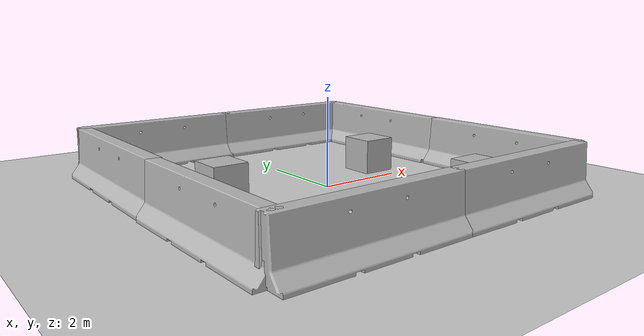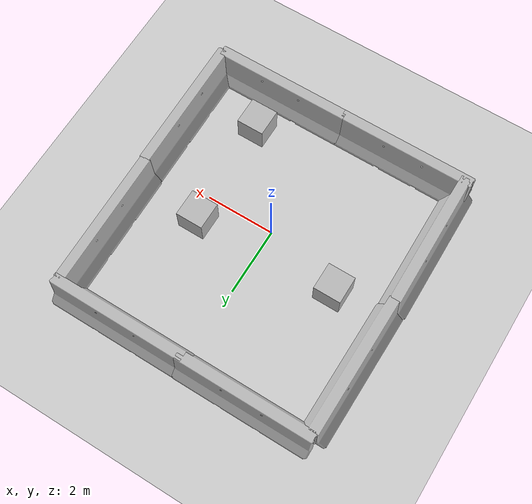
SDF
<sdf version="1.6">
 <world name="default">
  <light name="sun" type="directional">
   <pose>0 0 10 0 -0 0</pose>
   <diffuse>0.8 0.8 0.8 1</diffuse>
   <specular>0.2 0.2 0.2 1</specular>
   <attenuation>
    <range>1000</range>
    <constant>0.9</constant>
    <linear>0.01</linear>
    <quadratic>0.001</quadratic>
   </attenuation>
   <direction>-0.5 0.1 -0.9</direction>
  </light>
  <model name="ground_plane">
   <static>1</static>
   <link name="link">
    <collision name="collision">
     <geometry><plane><normal>0 0 1</normal><size>100 100</size></plane></geometry>
     <surface><friction><ode><mu>100</mu><mu2>50</mu2></ode></friction></surface>
    </collision>
    <visual name="visual">
     <cast_shadows>0</cast_shadows>
     <geometry><plane><normal>0 0 1</normal><size>100 100</size></plane></geometry>
     <material>
      <script><uri>file://media/materials/scripts/gazebo.material</uri><name>Gazebo/Grey</name></script>
     </material>
    </visual>
   </link>
  </model>
  <gravity>0 0 -9.8</gravity>
  <magnetic_field>6e-06 2.3e-05 -4.2e-05</magnetic_field>
  <atmosphere type="adiabatic"/>
  <physics name="default_physics" default="0" type="ode">
   <max_step_size>0.001</max_step_size>
   <real_time_factor>1</real_time_factor>
   <real_time_update_rate>1000</real_time_update_rate>
  </physics>
  <scene><ambient>0.4 0.4 0.4 1</ambient><background>0.7 0.7 0.7 1</background><shadows>1</shadows></scene>
  <spherical_coordinates>
   <surface_model>EARTH_WGS84</surface_model>
   <latitude_deg>0</latitude_deg>
   <longitude_deg>0</longitude_deg>
   <elevation>0</elevation>
   <heading_deg>0</heading_deg>
  </spherical_coordinates>
  <model name="number1">
   <pose>1.89329 0.737408 0.4 0 -0 0</pose>
   <static>1</static>
   <link name="link">
    <visual name="visual">
     <geometry><mesh><uri>model://number1/meshes/number.dae</uri></mesh></geometry>
     <material>
      <script>
       <uri>model://number1/materials/scripts</uri>
       <uri>model://number1/materials/textures</uri>
       <name>Number/One</name>
      </script>
     </material>
    </visual>
   </link>
  </model>
  <model name="jersey_barrier">
   <static>1</static>
   <link name="jersey_barrier::link">
    <visual name="visual">
     <geometry><mesh><uri>model://jersey_barrier/meshes/jersey_barrier.dae</uri></mesh></geometry>
    </visual>
    <collision name="upright">
     <pose>0 0 0.5715 0 -0 0</pose>
     <geometry><box><size>4.06542 0.3063 1.143</size></box></geometry>
    </collision>
    <collision name="base">
     <pose>0 0 0.032258 0 -0 0</pose>
     <geometry><box><size>4.06542 0.8107 0.064516</size></box></geometry>
    </collision>
    <collision name="base2">
     <pose>0 0 0.1 0 -0 0</pose>
     <geometry><box><size>4.06542 0.65 0.1</size></box></geometry>
    </collision>
    <collision name="base3">
     <pose>0 0 0.2 0 -0 0</pose>
     <geometry><box><size>4.06542 0.5 0.1</size></box></geometry>
    </collision>
    <collision name="left-angle">
     <pose>0 -0.224 0.2401 0.9 -0 0</pose>
     <geometry><box><size>4.06542 0.5 0.064516</size></box></geometry>
    </collision>
    <collision name="right-angle">
     <pose>0 0.224 0.2401 -0.9 0 0</pose>
     <geometry><box><size>4.06542 0.5 0.064516</size></box></geometry>
    </collision>
   </link>
   <pose>-2.05812 -3.65932 0 0 -0 0</pose>
  </model>
  <model name="jersey_barrier_0">
   <static>1</static>
   <link name="jersey_barrier_0::link">
    <visual name="visual">
     <geometry><mesh><uri>model://jersey_barrier/meshes/jersey_barrier.dae</uri></mesh></geometry>
    </visual>
    <collision name="upright">
     <pose>0 0 0.5715 0 -0 0</pose>
     <geometry><box><size>4.06542 0.3063 1.143</size></box></geometry>
    </collision>
    <collision name="base">
     <pose>0 0 0.032258 0 -0 0</pose>
     <geometry><box><size>4.06542 0.8107 0.064516</size></box></geometry>
    </collision>
    <collision name="base2">
     <pose>0 0 0.1 0 -0 0</pose>
     <geometry><box><size>4.06542 0.65 0.1</size></box></geometry>
    </collision>
    <collision name="base3">
     <pose>0 0 0.2 0 -0 0</pose>
     <geometry><box><size>4.06542 0.5 0.1</size></box></geometry>
    </collision>
    <collision name="left-angle">
     <pose>0 -0.224 0.2401 0.9 -0 0</pose>
     <geometry><box><size>4.06542 0.5 0.064516</size></box></geometry>
    </collision>
    <collision name="right-angle">
     <pose>0 0.224 0.2401 -0.9 0 0</pose>
     <geometry><box><size>4.06542 0.5 0.064516</size></box></geometry>
    </collision>
   </link>
   <pose>1.86529 -3.65845 0 0 -0 0</pose>
  </model>
  <model name="jersey_barrier_1">
   <static>1</static>
   <link name="jersey_barrier_1::link">
    <visual name="visual">
     <geometry><mesh><uri>model://jersey_barrier/meshes/jersey_barrier.dae</uri></mesh></geometry>
    </visual>
    <collision name="upright">
     <pose>0 0 0.5715 0 -0 0</pose>
     <geometry><box><size>4.06542 0.3063 1.143</size></box></geometry>
    </collision>
    <collision name="base">
     <pose>0 0 0.032258 0 -0 0</pose>
     <geometry><box><size>4.06542 0.8107 0.064516</size></box></geometry>
    </collision>
    <collision name="base2">
     <pose>0 0 0.1 0 -0 0</pose>
     <geometry><box><size>4.06542 0.65 0.1</size></box></geometry>
    </collision>
    <collision name="base3">
     <pose>0 0 0.2 0 -0 0</pose>
     <geometry><box><size>4.06542 0.5 0.1</size></box></geometry>
    </collision>
    <collision name="left-angle">
     <pose>0 -0.224 0.2401 0.9 -0 0</pose>
     <geometry><box><size>4.06542 0.5 0.064516</size></box></geometry>
    </collision>
    <collision name="right-angle">
     <pose>0 0.224 0.2401 -0.9 0 0</pose>
     <geometry><box><size>4.06542 0.5 0.064516</size></box></geometry>
    </collision>
   </link>
   <pose>-3.88228 -1.71234 0 0 -0 1.58102</pose>
  </model>
  <model name="jersey_barrier_2">
   <static>1</static>
   <link name="jersey_barrier_2::link">
    <visual name="visual">
     <geometry><mesh><uri>model://jersey_barrier/meshes/jersey_barrier.dae</uri></mesh></geometry>
    </visual>
    <collision name="upright">
     <pose>0 0 0.5715 0 -0 0</pose>
     <geometry><box><size>4.06542 0.3063 1.143</size></box></geometry>
    </collision>
    <collision name="base">
     <pose>0 0 0.032258 0 -0 0</pose>
     <geometry><box><size>4.06542 0.8107 0.064516</size></box></geometry>
    </collision>
    <collision name="base2">
     <pose>0 0 0.1 0 -0 0</pose>
     <geometry><box><size>4.06542 0.65 0.1</size></box></geometry>
    </collision>
    <collision name="base3">
     <pose>0 0 0.2 0 -0 0</pose>
     <geometry><box><size>4.06542 0.5 0.1</size></box></geometry>
    </collision>
    <collision name="left-angle">
     <pose>0 -0.224 0.2401 0.9 -0 0</pose>
     <geometry><box><size>4.06542 0.5 0.064516</size></box></geometry>
    </collision>
    <collision name="right-angle">
     <pose>0 0.224 0.2401 -0.9 0 0</pose>
     <geometry><box><size>4.06542 0.5 0.064516</size></box></geometry>
    </collision>
   </link>
   <pose>-1.92942 4.39501 0 0 -0 0</pose>
  </model>
  <model name="jersey_barrier_3">
   <static>1</static>
   <link name="jersey_barrier_3::link">
    <visual name="visual">
     <geometry><mesh><uri>model://jersey_barrier/meshes/jersey_barrier.dae</uri></mesh></geometry>
    </visual>
    <collision name="upright">
     <pose>0 0 0.5715 0 -0 0</pose>
     <geometry><box><size>4.06542 0.3063 1.143</size></box></geometry>
    </collision>
    <collision name="base">
     <pose>0 0 0.032258 0 -0 0</pose>
     <geometry><box><size>4.06542 0.8107 0.064516</size></box></geometry>
    </collision>
    <collision name="base2">
     <pose>0 0 0.1 0 -0 0</pose>
     <geometry><box><size>4.06542 0.65 0.1</size></box></geometry>
    </collision>
    <collision name="base3">
     <pose>0 0 0.2 0 -0 0</pose>
     <geometry><box><size>4.06542 0.5 0.1</size></box></geometry>
    </collision>
    <collision name="left-angle">
     <pose>0 -0.224 0.2401 0.9 -0 0</pose>
     <geometry><box><size>4.06542 0.5 0.064516</size></box></geometry>
    </collision>
    <collision name="right-angle">
     <pose>0 0.224 0.2401 -0.9 0 0</pose>
     <geometry><box><size>4.06542 0.5 0.064516</size></box></geometry>
    </collision>
   </link>
   <pose>1.88876 4.38536 0 0 -0 0</pose>
  </model>
  <model name="jersey_barrier_4">
   <static>1</static>
   <link name="jersey_barrier_4::jersey_barrier_4::link">
    <visual name="visual">
     <geometry><mesh><uri>model://jersey_barrier/meshes/jersey_barrier.dae</uri></mesh></geometry>
    </visual>
    <collision name="upright">
     <pose>0 0 0.5715 0 -0 0</pose>
     <geometry><box><size>4.06542 0.3063 1.143</size></box></geometry>
    </collision>
    <collision name="base">
     <pose>0 0 0.032258 0 -0 0</pose>
     <geometry><box><size>4.06542 0.8107 0.064516</size></box></geometry>
    </collision>
    <collision name="base2">
     <pose>0 0 0.1 0 -0 0</pose>
     <geometry><box><size>4.06542 0.65 0.1</size></box></geometry>
    </collision>
    <collision name="base3">
     <pose>0 0 0.2 0 -0 0</pose>
     <geometry><box><size>4.06542 0.5 0.1</size></box></geometry>
    </collision>
    <collision name="left-angle">
     <pose>0 -0.224 0.2401 0.9 -0 0</pose>
     <geometry><box><size>4.06542 0.5 0.064516</size></box></geometry>
    </collision>
    <collision name="right-angle">
     <pose>0 0.224 0.2401 -0.9 0 0</pose>
     <geometry><box><size>4.06542 0.5 0.064516</size></box></geometry>
    </collision>
   </link>
   <pose>3.77671 2.32653 0 0 0 -1.55992</pose>
  </model>
  <model name="jersey_barrier_5">
   <static>1</static>
   <link name="jersey_barrier_5::link">
    <visual name="visual">
     <geometry><mesh><uri>model://jersey_barrier/meshes/jersey_barrier.dae</uri></mesh></geometry>
    </visual>
    <collision name="upright">
     <pose>0 0 0.5715 0 -0 0</pose>
     <geometry><box><size>4.06542 0.3063 1.143</size></box></geometry>
    </collision>
    <collision name="base">
     <pose>0 0 0.032258 0 -0 0</pose>
     <geometry><box><size>4.06542 0.8107 0.064516</size></box></geometry>
    </collision>
    <collision name="base2">
     <pose>0 0 0.1 0 -0 0</pose>
     <geometry><box><size>4.06542 0.65 0.1</size></box></geometry>
    </collision>
    <collision name="base3">
     <pose>0 0 0.2 0 -0 0</pose>
     <geometry><box><size>4.06542 0.5 0.1</size></box></geometry>
    </collision>
    <collision name="left-angle">
     <pose>0 -0.224 0.2401 0.9 -0 0</pose>
     <geometry><box><size>4.06542 0.5 0.064516</size></box></geometry>
    </collision>
    <collision name="right-angle">
     <pose>0 0.224 0.2401 -0.9 0 0</pose>
     <geometry><box><size>4.06542 0.5 0.064516</size></box></geometry>
    </collision>
   </link>
   <pose>3.8409 -1.66107 0 0 -0 1.57986</pose>
  </model>
  <model name="jersey_barrier_6">
   <static>1</static>
   <link name="jersey_barrier_6::link">
    <visual name="visual">
     <geometry><mesh><uri>model://jersey_barrier/meshes/jersey_barrier.dae</uri></mesh></geometry>
    </visual>
    <collision name="upright">
     <pose>0 0 0.5715 0 -0 0</pose>
     <geometry><box><size>4.06542 0.3063 1.143</size></box></geometry>
    </collision>
    <collision name="base">
     <pose>0 0 0.032258 0 -0 0</pose>
     <geometry><box><size>4.06542 0.8107 0.064516</size></box></geometry>
    </collision>
    <collision name="base2">
     <pose>0 0 0.1 0 -0 0</pose>
     <geometry><box><size>4.06542 0.65 0.1</size></box></geometry>
    </collision>
    <collision name="base3">
     <pose>0 0 0.2 0 -0 0</pose>
     <geometry><box><size>4.06542 0.5 0.1</size></box></geometry>
    </collision>
    <collision name="left-angle">
     <pose>0 -0.224 0.2401 0.9 -0 0</pose>
     <geometry><box><size>4.06542 0.5 0.064516</size></box></geometry>
    </collision>
    <collision name="right-angle">
     <pose>0 0.224 0.2401 -0.9 0 0</pose>
     <geometry><box><size>4.06542 0.5 0.064516</size></box></geometry>
    </collision>
   </link>
   <pose>-3.85305 2.28474 0 0 0 -1.57955</pose>
  </model>
  <model name="number1_0">
   <pose>-2.30307 0.607397 0.4 0 -0 0</pose>
   <static>1</static>
   <link name="link">
    <visual name="visual">
     <geometry><mesh><uri>model://number1/meshes/number.dae</uri></mesh></geometry>
     <material>
      <script>
       <uri>model://number1/materials/scripts</uri>
       <uri>model://number1/materials/textures</uri>
       <name>Number/One</name>
      </script>
     </material>
    </visual>
   </link>
  </model>
  <model name="number3">
   <pose>2.0054 -2.51081 0.4 0 -0 0</pose>
   <static>1</static>
   <link name="link">
    <visual name="visual">
     <geometry><mesh><uri>model://number1/meshes/number.dae</uri></mesh></geometry>
     <material>
      <script>
       <uri>model://number3/materials/scripts</uri>
       <uri>model://number3/materials/textures</uri>
       <name>Number/Three</name>
      </script>
     </material>
    </visual>
   </link>
  </model>
 </world>
</sdf>
